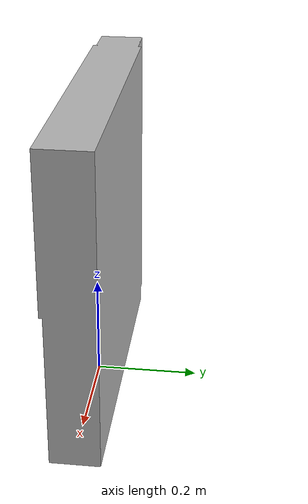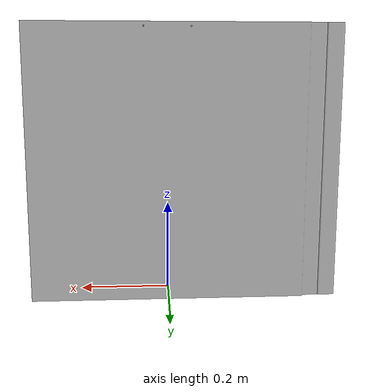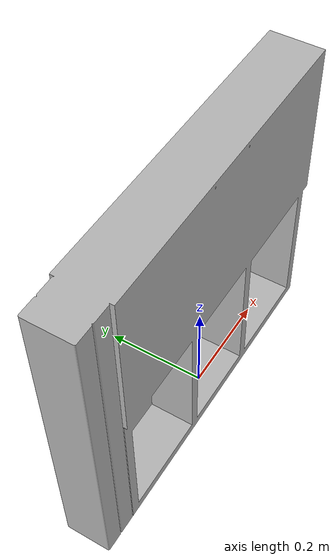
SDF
<sdf version='1.6'>
  <model name='wall_plain_with_blocking'>
    <link name='wall_plain_with_blocking'>
      <pose frame=''>0 0 0 0 0 0</pose>

      <inertial>
        <pose frame=''>0 0.00594 0.31407 0 0 0</pose>
        <mass>1</mass>
        <inertia>
          <ixx>0.01</ixx>
          <ixy>0.001</ixy>
          <ixz>0.001</ixz>
          <iyy>0.01</iyy>
          <iyz>0.001</iyz>
          <izz>0.01</izz>
        </inertia>
      </inertial>

      <collision name='wall_collision'>
	<!-- Change max_vel and/or min_depth to keep from "bouncing" -->

	<surface>
	  <contact>
	    <ode>
	      <max_vel>0</max_vel>
	      <min_depth>0.0001</min_depth>
	      <kp>1e12</kp>
	      <kd>1e0</kd>
	    </ode>
	  </contact>

	  <friction>
	    <ode>
	      <mu>1000.0</mu>
	      <mu2>1000.0</mu2>
	      <fdir1>0 0 0</fdir1>
	    </ode>
	  </friction>
	</surface>
        <pose frame=''>0 0 0 0 0 0</pose>
        <geometry>
          <mesh>
            <scale>0.0254 0.0254 0.0254</scale>
            <uri>model://wall_plain_with_blocking/meshes/wall_plain_with_blocking.stl</uri>
          </mesh>
        </geometry>
      </collision>

      <visual name='wall_plain_visual'>
        <pose frame=''>0 0 0 0 0 0</pose>
        <geometry>
          <mesh>
            <scale>0.0254 0.0254 0.0254</scale>
            <uri>model://wall_plain_with_blocking/meshes/wall_plain_with_blocking.stl</uri>
          </mesh>
        </geometry>
      </visual>

    </link>
  </model>
</sdf>
